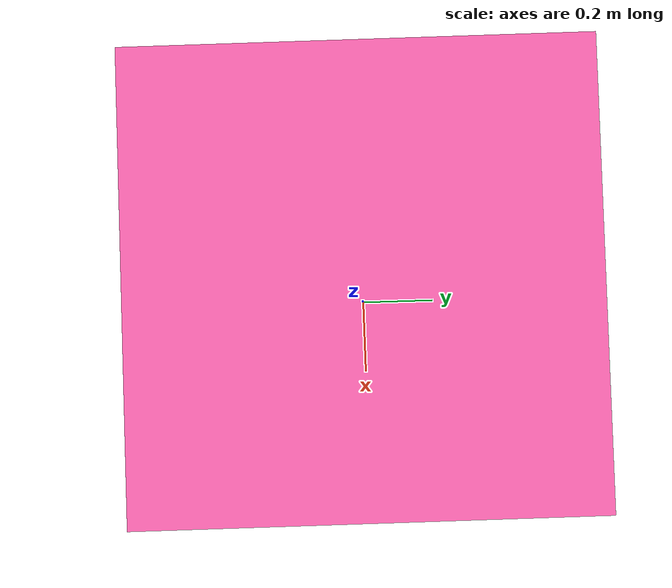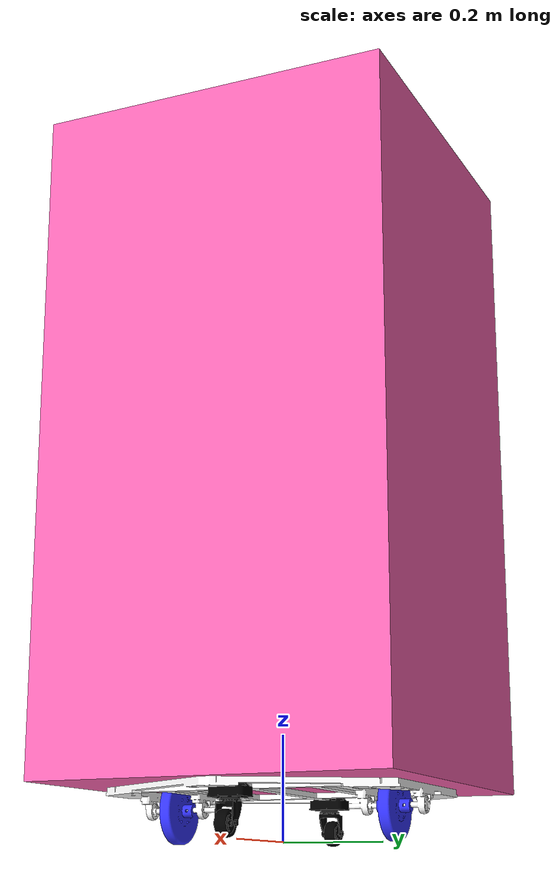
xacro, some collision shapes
<?xml version="1.0"?>
<robot xmlns:xacro="http://www.ros.org/wiki/xacro" name="tifa">

    <!-- sim_mode = true  -> hardware Gazebo (gz_ros2_control)
         sim_mode = false -> hardware asli (diffdrive_arduino). Default aman = robot fisik. -->
    <xacro:arg name="sim_mode" default="false"/>

    <!-- namespace robot (mis. tifa1). Hanya dipakai di sim: prefix topic sensor Gazebo
         dan namespace controller_manager di dalam Gazebo. Kosong = tanpa namespace. -->
    <xacro:arg name="namespace" default=""/>

    <xacro:include filename="robot_core.xacro"/>

    <!-- Hardware - satu blok ros2_control, plugin dipilih oleh sim_mode -->
    <xacro:include filename="ros2_control.xacro"/>

    <xacro:include filename="lidar.xacro"/>
    <xacro:include filename="imu.xacro"/>

</robot>

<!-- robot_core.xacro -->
<robot xmlns:xacro="http://www.ros.org/wiki/xacro" >

    <xacro:include filename="inertial_macros.xacro"/>

    <material name="white">
        <color rgba="1 1 1 1"/>
    </material>
    <material name="orange">
        <color rgba="1 0.3 0.1 1"/>
    </material>
    <material name="blue">
        <color rgba="0.2 0.2 1 1"/>
    </material>
    <material name="black">
        <color rgba="0 0 0 1"/>
    </material>
    <material name="red">
        <color rgba="1 0 0 1"/>
    </material>
    <material name="green_tosca">
        <color rgba="0.0 0.7 0.6 1"/>
    </material>

    <material name="pink">
        <color rgba="1.0 0.4 0.7 1"/>
    </material>

    <material name="gray">
        <color rgba="0.6 0.6 0.6 1"/>
    </material>

    <!-- BASE LINK -->

    <link name="base_link">
    </link>

    <!-- BASE FOOTPRINT     -->
    <joint name="base_footprint_joint" type="fixed">
        <parent link="base_link"/>
        <child link="base_footprint"/>
        <origin xyz="0 0 0" rpy="0 0 0"/>
    </joint>

    <link name="base_footprint">
    </link>

    <!-- CHASSIS LINK  -->
    <joint name="chassis_joint" type="fixed">
        <parent link="base_link"/>
        <child link="chassis"/>
        <origin xyz="0.0 0.0 0.0"/>
    </joint>

    <link name="chassis">
        <visual>
            <origin xyz="0.0 0.0 0.09" rpy="0.0 0.0 0.0"/>
            <geometry>
                <mesh filename="package://tifa_bringup/meshes/base.stl" scale="0.001 0.001 0.001"/>
            </geometry>
            <material name="white"/>
        </visual>
        <collision>
            <origin xyz="0.0 0.0 0.18" rpy="0.0 0.0 0.0"/>
            <geometry>
                <box size="0.7 0.7 0.19"/>
            </geometry>
        </collision>
        <xacro:inertial_box mass="0.5" x="0.06" y="0.6" z="0.3">
            <origin xyz="0.0 0.0 0.0" rpy="0.0 0.0 0.0"/>
        </xacro:inertial_box>
    </link>
    <gazebo reference="chassis">
        <material>
            Gazebo/White
        </material>
    </gazebo>

    <!-- LEFT WHEEL -->
    <joint name="left_wheel_joint" type="continuous">
        <parent link="base_link"/>
        <child link="left_wheel"/>
        <origin xyz="0.0 0.2125 0.063" rpy="0 0 0"/>
        <axis xyz="0.0 1.0 0.0"/>
    </joint>

    <link name="left_wheel">
        <visual>
            <geometry>
                <mesh filename="package://tifa_bringup/meshes/left_wheel.stl" scale="0.001 0.001 0.001"/>
            </geometry>
            <material name="blue"/>
        </visual>
        <collision>
            <origin xyz="0 0.0125 0" rpy="1.5708 0 0"/>
            <geometry>
                <cylinder radius="0.0635" length="0.024"/>
            </geometry>
        </collision>
        <xacro:inertial_cylinder mass="0.1" length="0.024" radius="0.0635">
            <origin xyz="0 0 0" rpy="0 0 0"/>
        </xacro:inertial_cylinder>
    </link>
    <gazebo reference="left_wheel">
        <material>
            Gazebo/Blue
        </material>
    </gazebo>

    <!-- RIGHT WHEEL -->
    <joint name="right_wheel_joint" type="continuous">
        <parent link="base_link"/>
        <child link="right_wheel"/>
        <origin xyz="0.0 -0.2325 0.063" rpy="0 0 0"/>
        <axis xyz="0.0 1.0 0.0"/>
    </joint>

    <link name="right_wheel">
        <visual>
            <geometry>
                <mesh filename="package://tifa_bringup/meshes/right_wheel.stl" scale="0.001 0.001 0.001"/>
            </geometry>
            <material name="blue"/>
        </visual>
        <collision>
            <origin xyz="0 0.0125 0" rpy="1.5708 0 0"/>
            <geometry>
                <cylinder radius="0.0635" length="0.024"/>
            </geometry>
        </collision>
        <xacro:inertial_cylinder mass="0.1" length="0.024" radius="0.0635">
            <origin xyz="0 0 0" rpy="0 0 0"/>
        </xacro:inertial_cylinder>
    </link>
    <gazebo reference="right_wheel">
        <material>
            Gazebo/Blue
        </material>
    </gazebo>

    <!-- CASTER WHEEL REAR LINK  -->
    <joint name="rear_caster_wheel_joint" type="fixed">
        <parent link="chassis"/>
        <child link="rear_caster_wheel"/>
        <origin xyz="0.2 0.0 0.052"/>
    </joint>
    <link name="rear_caster_wheel">
        <visual>
            <geometry>
                <mesh filename="package://tifa_bringup/meshes/front_caster.stl" scale="0.001 0.001 0.001"/>
            </geometry>
            <material name="black"/>
        </visual>
        <collision>
            <origin xyz="0.038 0.0 -0.002" rpy="1.5708 0 0"/>
            <geometry>
                <sphere radius="0.05"/>
            </geometry>
        </collision>
        <xacro:inertial_sphere mass="0.1" radius="0.05">
            <origin xyz="0.0 0.0 0.0" rpy="0.0 0.0 0.0"/>
        </xacro:inertial_sphere>
    </link>
    <gazebo reference="rear_caster_wheel">
        <material>
            Gazebo/Black
        </material>
        <!-- caster fixed, friction ~0 agar tidak menahan robot di simulasi -->
        <mu1 value="0.001"></mu1>
        <mu2 value="0.001"></mu2>
    </gazebo>

    <!-- CASTER WHEEL BACK LINK  -->
    <joint name="back_caster_wheel_joint" type="fixed">
        <parent link="chassis"/>
        <child link="back_caster_wheel"/>
        <origin xyz="-0.2 0.0 0.052" rpy="0 0 3.14"/>
    </joint>
    <link name="back_caster_wheel">
        <visual>
            <geometry>
                <mesh filename="package://tifa_bringup/meshes/back_caster.stl" scale="0.001 0.001 0.001"/>
            </geometry>
            <material name="black"/>
        </visual>
        <collision>
            <origin xyz="0.038 0.0 -0.002" rpy="1.5708 0 0"/>
            <geometry>
                <sphere radius="0.05"/>
            </geometry>
        </collision>
        <xacro:inertial_sphere mass="0.1" radius="0.05">
            <origin xyz="0.0 0.0 0.0" rpy="0.0 0.0 0.0"/>
        </xacro:inertial_sphere>
    </link>
    <gazebo reference="back_caster_wheel">
        <material>
            Gazebo/Black
        </material>
        <mu1 value="0.001"></mu1>
        <mu2 value="0.001"></mu2>
    </gazebo>

    <!-- COVER -->
    <joint name="cover_joint" type="fixed">
        <parent link="base_link"/>
        <child link="cover"/>
        <origin xyz="0.0 0.0 0.0"/>
    </joint>
    <link name="cover">
        <visual name="cover_robot">
            <origin xyz="0.0 0.0 0.09" rpy="0.0 0.0 1.57"/>
            <geometry>
                <mesh filename="package://tifa_bringup/meshes/body_case.stl" scale="0.001 0.001 0.001"/>
            </geometry>
            <material name="pink"/>
        </visual>
        <collision>
            <origin xyz="0.0 0.0 0.75" rpy="0.0 0.0 0.0"/>
            <geometry>
                <box size="0.7 0.7 1.3"/>
            </geometry>
        </collision>
        <xacro:inertial_box mass="20.0" x="0.8" y="0.8" z="1.5">
            <origin xyz="0.0 0.0 0.0" rpy="0.0 0.0 0.0"/>
        </xacro:inertial_box>
    </link>
</robot>

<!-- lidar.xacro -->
<robot xmlns:xacro="http://www.ros.org/wiki/xacro">
  <xacro:include filename="inertial_macros.xacro"/>

  <joint name="laser_joint" type="fixed">
    <parent link="chassis"/>
    <child link="laser_frame"/>
    <origin xyz="0.22 0 0.27" rpy="0 0 -3.14159"/>
  </joint>

  <link name="laser_frame">
  <visual>
    <geometry>
      <mesh filename="package://tifa_bringup/meshes/rplidar.stl" scale="0.001 0.001 0.001"/>
    </geometry>
    <material name="red"/>
  </visual>

  <collision>
    <geometry>
      <cylinder radius="0.05" length="0.04"/>
    </geometry>
  </collision>

  <xacro:inertial_cylinder mass="0.001" length="0.04" radius="0.05">
    <origin xyz="0 0 0" rpy="0 0 0"/>
  </xacro:inertial_cylinder>
  </link>

  <!-- Gazebo Harmonic native lidar -->
  <gazebo reference="laser_frame">
      <sensor name="gpu_lidar" type="gpu_lidar">
      <pose relative_to="laser_frame">0 0 0.03 0 0 0</pose>

      <topic>$(arg namespace)/scan</topic>
      <update_rate>10</update_rate>

        <lidar>
          <scan>
            <horizontal>
              <samples>720</samples>
              <resolution>1</resolution>
              <min_angle>-3.1459</min_angle>
              <max_angle>3.1459</max_angle>
            </horizontal>
          </scan>
          <range>
            <min>0.01</min>
            <max>12</max>
            <resolution>0.005</resolution>
          </range>
          <noise>
            <type>gaussian</type>
            <mean>0</mean>
            <stddev>0.001</stddev>
          </noise>
        </lidar>

        <gz_frame_id>laser_frame</gz_frame_id>
        <visualize>true</visualize>
        <always_on>1</always_on>
      </sensor>
  </gazebo>

</robot>

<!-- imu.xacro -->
<robot xmlns:xacro="http://www.ros.org/wiki/xacro" >

    <joint name="imu_joint" type="fixed">
        <origin xyz="0.245 0 0.335" rpy="0 0 -3.14159"/>
        <parent link="chassis"/>
        <child link="imu_link"/>
    </joint>

    <link name="imu_link">
        <visual>
            <origin xyz="0 0 0" rpy="0 0 1.5708"/>
            <geometry>
                <box size="0.01 0.01 0.005"/>
            </geometry>
            <material name="blue"/>
        </visual>
        <collision>
            <geometry>
                <cylinder radius="0.05" length="0.04"/>
            </geometry>
        </collision>
        <xacro:inertial_cylinder mass="0.001" length="0.04" radius="0.05">
            <origin xyz="0 0 0" rpy="0 0 0"/>
        </xacro:inertial_cylinder>
    </link>

    <gazebo reference="imu_link">
        <sensor name="imu" type="imu">
        <always_on>1</always_on>
        <update_rate>50</update_rate>
        <visualize>true</visualize>
        <topic>$(arg namespace)/imu</topic>
        <enable_metrics>true</enable_metrics>
        <gz_frame_id>imu_link</gz_frame_id>
        <!-- Noise gaussian: gz mengisi covariance /imu dari stddev ini.
             Tanpa noise covariance = 0 dan EKF mempercayai IMU secara mutlak. -->
        <imu>
            <angular_velocity>
                <x><noise type="gaussian"><mean>0.0</mean><stddev>2e-3</stddev></noise></x>
                <y><noise type="gaussian"><mean>0.0</mean><stddev>2e-3</stddev></noise></y>
                <z><noise type="gaussian"><mean>0.0</mean><stddev>2e-3</stddev></noise></z>
            </angular_velocity>
            <linear_acceleration>
                <x><noise type="gaussian"><mean>0.0</mean><stddev>1.7e-2</stddev></noise></x>
                <y><noise type="gaussian"><mean>0.0</mean><stddev>1.7e-2</stddev></noise></y>
                <z><noise type="gaussian"><mean>0.0</mean><stddev>1.7e-2</stddev></noise></z>
            </linear_acceleration>
        </imu>
        </sensor>
    </gazebo>

</robot>
